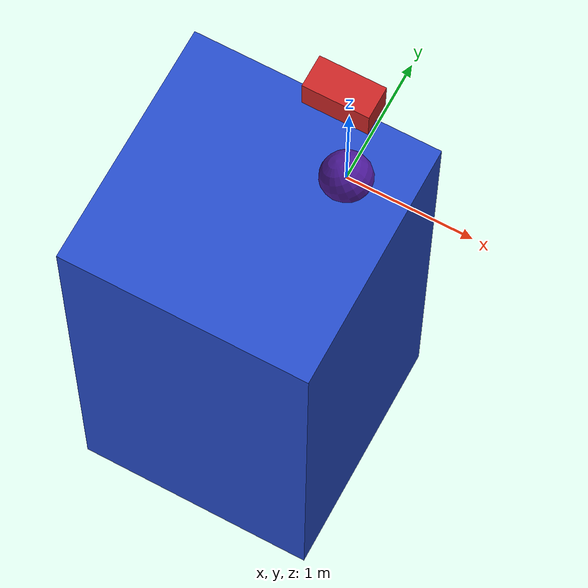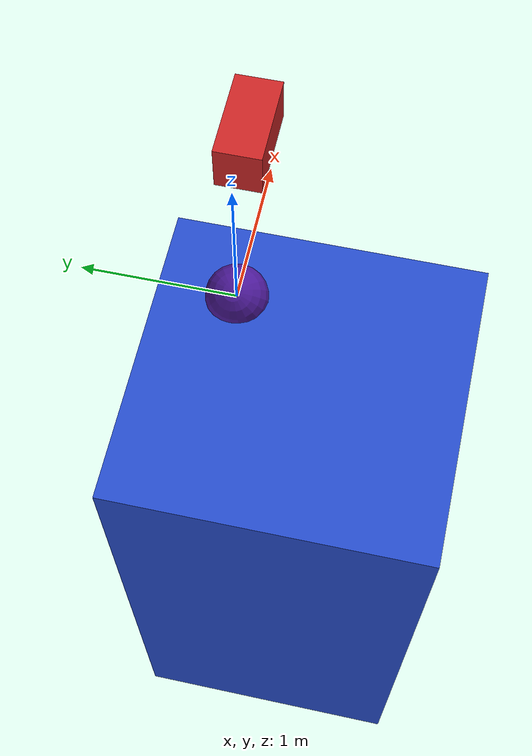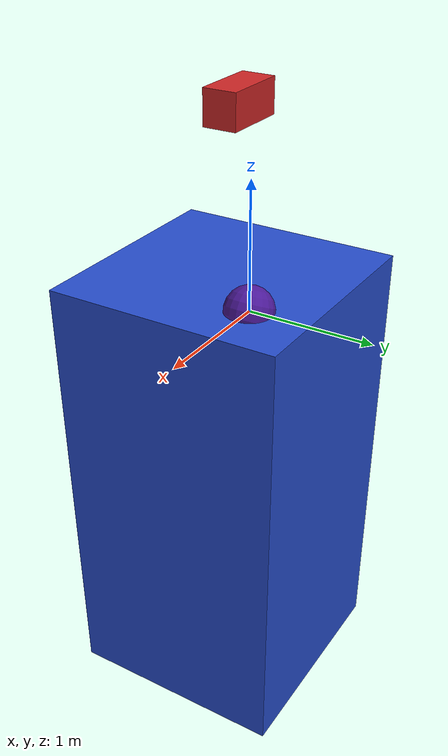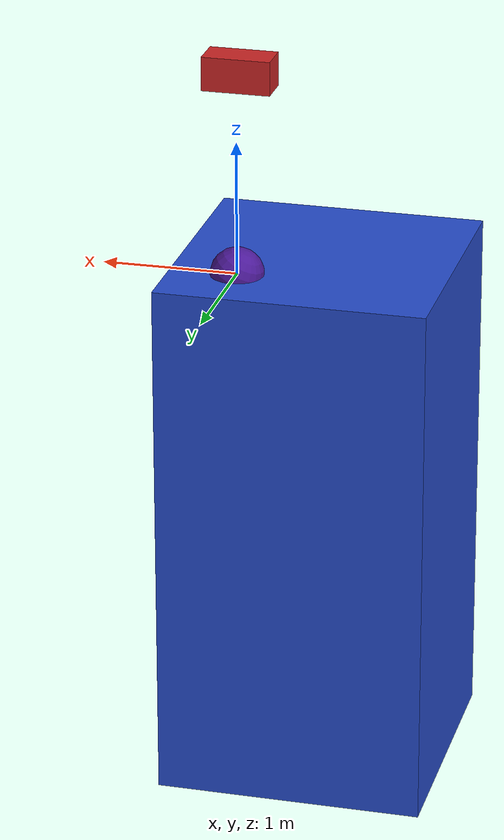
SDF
<?xml version="1.0" ?>
<sdf version="1.6">
<!-- WORLD SETTINGS -->
	<world name="debug_collapse">
		<physics type="ode">
			<gravity> 0.0 0.0 0.0</gravity>
		</physics>
		<include>
			<uri>model://sun</uri>
		</include>

		<model name="this_is_my_name">
			<pose>0 0 0 0 0 0 </pose>
			<static>false</static>
			<self_collide>false</self_collide>
			<link name="base">
				<pose>-0.5 -0.5 -2 0 0 0</pose>
				<gravity>true</gravity>
				<visual name="base_vis">
					<pose>0 0 0 0 0 0</pose>
					<geometry>
						<box>
							<size>2 2 4</size>
						</box>
					</geometry>
					<material>
						<script>
							<uri>file://media/materials/scripts/gazebo.material</uri>
							<name>Gazebo/Blue</name>
						</script>
					</material>
				</visual>
			</link>
			<link name="intermediate">
				<pose>0 -0.1 1.5 0 0 0 </pose>
				<gravity>true</gravity>
				<inertial>
					<mass>5</mass>
					<inertia>
						<ixx>0.1</ixx>
						<ixy>0</ixy>
						<ixz>0.0</ixz>
						<iyy>0.1</iyy>
						<iyz>0</iyz>
						<izz>0.1</izz>
					</inertia>
				</inertial>
				<visual name="intermediate_vis">
					<pose>0 0 0 0 0 0</pose>
					<geometry>
						<box>
							<size>0.5 0.25 0.25</size>
						</box>
					</geometry>
					<material>
						<script>
							<uri>file://media/materials/scripts/gazebo.material</uri>
							<name>Gazebo/Red</name>
						</script>
					</material>
				</visual>
			</link>
			<joint name ="base_joint" type="revolute">
				<pose> 0 0 0 0 0 0 </pose>
				<parent>base</parent>
				<child>intermediate</child>
				<axis>
					<xyz>0 0 1</xyz>
					<dynamics>
						<damping>500</damping>
					</dynamics>
				</axis>
			</joint>

			<link name="out_there">
				<pose>0 0 0 0 -0.453785605518556 0</pose>
				<inertial>
					<mass>0.001</mass>
					<inertia>
						<ixx>.0166667</ixx>
						<ixy>0</ixy>
						<ixz>0</ixz>
						<iyy>.0166667</iyy>
						<iyz>0</iyz>
						<izz>.0166667</izz>
					</inertia>
				</inertial>
				<visual name="ot_visual">
					<geometry>
						<sphere>
							<radius>0.2</radius>
						</sphere>
					</geometry>
					<material>
						<script>
							<uri>file://media/materials/scripts/gazebo.material</uri>
							<name>Gazebo/Indigo</name>
						</script>
					</material>
				</visual>
			</link>

			<joint type="fixed" name="fused_frameii">
				<pose>0.0 0.0 0.0 0 0 0</pose>
				<child>out_there</child>
				<parent>intermediate</parent>
			</joint>
		</model>
	</world>
</sdf>
